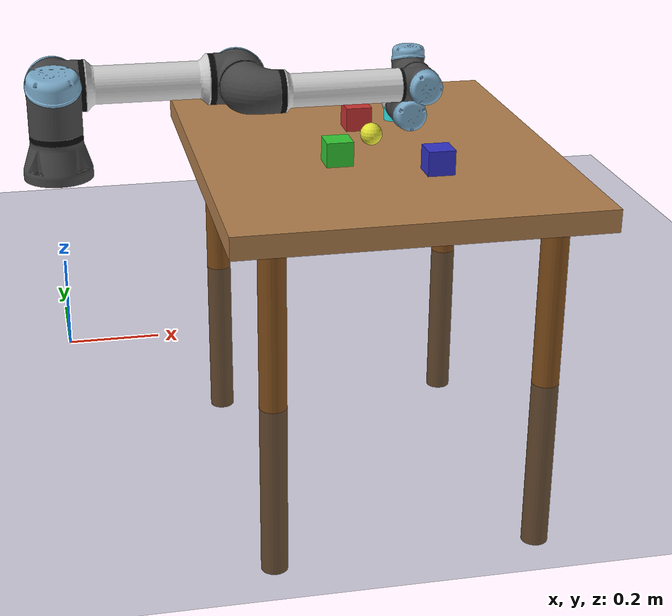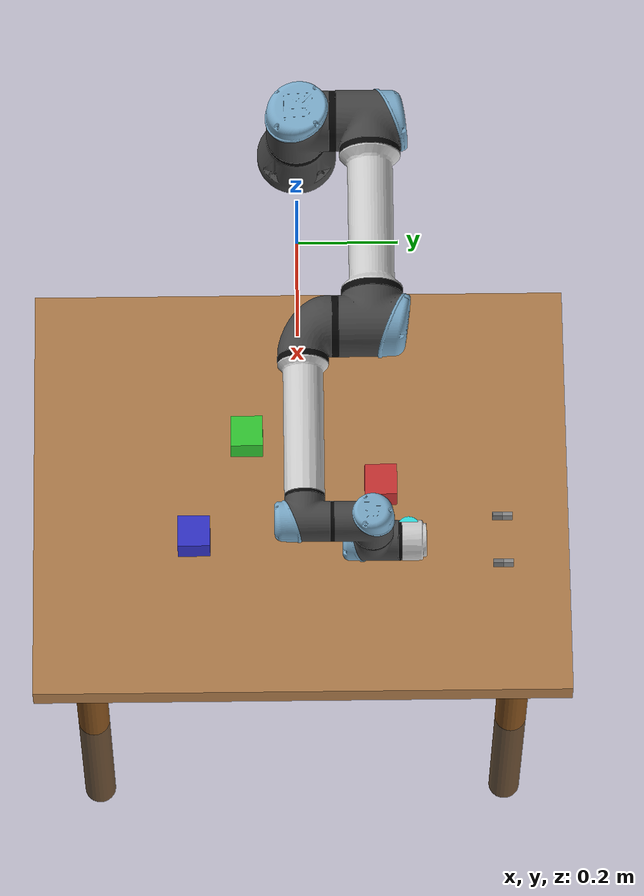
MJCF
<mujoco model="ur5e_manipulation_scene">
  <compiler angle="radian" meshdir="mujoco_menagerie" autolimits="true"/>

  <option integrator="implicitfast" timestep="0.002"/>

  <statistic center="0.5 0 0.4" extent="1.2"/>

  <visual>
    <headlight diffuse="0.6 0.6 0.6" ambient="0.3 0.3 0.3" specular="0.1 0.1 0.1"/>
    <rgba haze="0.15 0.25 0.35 1"/>
    <global azimuth="120" elevation="-20"/>
    <quality shadowsize="2048"/>
    <map stiffness="700" shadowscale="0.5" fogstart="10" fogend="15"/>
  </visual>

  <default>
    <default class="ur5e">
      <material specular="0.5" shininess="0.25"/>
      <joint axis="0 1 0" range="-6.28319 6.28319" armature="0.1" damping="10"/>
      <general gaintype="fixed" biastype="affine" ctrlrange="-6.2831 6.2831" gainprm="5000" biasprm="0 -5000 -1000"
        forcerange="-400 400"/>
      <default class="size3">
        <default class="size3_limited">
          <joint range="-3.1415 3.1415"/>
          <general ctrlrange="-3.1415 3.1415"/>
        </default>
      </default>
      <default class="size1">
        <general gainprm="1000" biasprm="0 -1000 -200" forcerange="-60 60"/>
      </default>
      <default class="visual">
        <geom type="mesh" contype="0" conaffinity="0" group="2"/>
      </default>
      <default class="collision">
        <geom type="capsule" group="3"/>
        <default class="eef_collision">
          <geom type="cylinder"/>
        </default>
      </default>
      <site size="0.001" rgba="0.5 0.5 0.5 0.3" group="4"/>
    </default>
  </default>

  <asset>
    <!-- UR5e materials -->
    <material class="ur5e" name="black" rgba="0.033 0.033 0.033 1"/>
    <material class="ur5e" name="jointgray" rgba="0.278 0.278 0.278 1"/>
    <material class="ur5e" name="linkgray" rgba="0.82 0.82 0.82 1"/>
    <material class="ur5e" name="urblue" rgba="0.49 0.678 0.8 1"/>

    <!-- Robotiq 2F-85 gripper materials -->
    <material name="metal" rgba="0.58 0.58 0.58 1"/>
    <material name="silicone" rgba="0.1882 0.1882 0.1882 1"/>
    <material name="gray" rgba="0.4627 0.4627 0.4627 1"/>
    <material name="robotiq_black" rgba="0.149 0.149 0.149 1"/>

    <!-- Environment materials -->
    <texture type="skybox" builtin="gradient" rgb1="0.3 0.5 0.7" rgb2="0 0 0" width="512" height="3072"/>
    <texture type="2d" name="groundplane" builtin="checker" mark="edge" rgb1="0.2 0.3 0.4" rgb2="0.1 0.2 0.3"
      markrgb="0.8 0.8 0.8" width="300" height="300"/>
    <material name="groundplane" texture="groundplane" texuniform="true" texrepeat="5 5" reflectance="0.2"/>

    <!-- Table material -->
    <material name="table" rgba="0.7 0.5 0.3 1"/>

    <!-- Object materials -->
    <material name="red_cube" rgba="0.8 0.2 0.2 1"/>
    <material name="green_cube" rgba="0.2 0.8 0.2 1"/>
    <material name="blue_cube" rgba="0.2 0.2 0.8 1"/>
    <material name="yellow_sphere" rgba="0.9 0.9 0.2 1"/>
    <material name="cyan_cylinder" rgba="0.2 0.9 0.9 1"/>

    <!-- UR5e meshes -->
    <mesh file="universal_robots_ur5e/assets/base_0.obj"/>
    <mesh file="universal_robots_ur5e/assets/base_1.obj"/>
    <mesh file="universal_robots_ur5e/assets/shoulder_0.obj"/>
    <mesh file="universal_robots_ur5e/assets/shoulder_1.obj"/>
    <mesh file="universal_robots_ur5e/assets/shoulder_2.obj"/>
    <mesh file="universal_robots_ur5e/assets/upperarm_0.obj"/>
    <mesh file="universal_robots_ur5e/assets/upperarm_1.obj"/>
    <mesh file="universal_robots_ur5e/assets/upperarm_2.obj"/>
    <mesh file="universal_robots_ur5e/assets/upperarm_3.obj"/>
    <mesh file="universal_robots_ur5e/assets/forearm_0.obj"/>
    <mesh file="universal_robots_ur5e/assets/forearm_1.obj"/>
    <mesh file="universal_robots_ur5e/assets/forearm_2.obj"/>
    <mesh file="universal_robots_ur5e/assets/forearm_3.obj"/>
    <mesh file="universal_robots_ur5e/assets/wrist1_0.obj"/>
    <mesh file="universal_robots_ur5e/assets/wrist1_1.obj"/>
    <mesh file="universal_robots_ur5e/assets/wrist1_2.obj"/>
    <mesh file="universal_robots_ur5e/assets/wrist2_0.obj"/>
    <mesh file="universal_robots_ur5e/assets/wrist2_1.obj"/>
    <mesh file="universal_robots_ur5e/assets/wrist2_2.obj"/>
    <mesh file="universal_robots_ur5e/assets/wrist3.obj"/>

    <!-- Robotiq 2F-85 gripper meshes -->
    <mesh name="gripper_base_mount" file="robotiq_2f85/assets/base_mount.stl" scale="0.001 0.001 0.001"/>
    <mesh name="gripper_base" file="robotiq_2f85/assets/base.stl" scale="0.001 0.001 0.001"/>
    <mesh name="gripper_driver" file="robotiq_2f85/assets/driver.stl" scale="0.001 0.001 0.001"/>
    <mesh name="gripper_coupler" file="robotiq_2f85/assets/coupler.stl" scale="0.001 0.001 0.001"/>
    <mesh name="gripper_follower" file="robotiq_2f85/assets/follower.stl" scale="0.001 0.001 0.001"/>
    <mesh name="gripper_pad" file="robotiq_2f85/assets/pad.stl" scale="0.001 0.001 0.001"/>
    <mesh name="gripper_silicone_pad" file="robotiq_2f85/assets/silicone_pad.stl" scale="0.001 0.001 0.001"/>
    <mesh name="gripper_spring_link" file="robotiq_2f85/assets/spring_link.stl" scale="0.001 0.001 0.001"/>
  </asset>

  <worldbody>
    <!-- Lighting -->
    <light name="top_light" pos="0.5 0 2" dir="0 0 -1" directional="true" diffuse="0.8 0.8 0.8"/>
    <light name="side_light" pos="1 1 1.5" dir="-0.5 -0.5 -1" directional="true" diffuse="0.4 0.4 0.4"/>

    <!-- Floor -->
    <geom name="floor" size="0 0 0.05" type="plane" material="groundplane"/>

    <!-- Cameras -->
    <camera name="external_camera_left" pos="1.0 0.8 1.2" xyaxes="-0.8 0.6 0 -0.3 -0.4 0.9" fovy="60"/>
    <camera name="front_camera" pos="1.5 0 0.8" xyaxes="0 -1 0 0.5 0 1" fovy="60"/>

    <!-- Table -->
    <body name="table" pos="0.7 0 0">
      <geom name="table_top" type="box" size="0.4 0.5 0.025" pos="0 0 0.4" material="table"/>
      <geom name="table_leg1" type="cylinder" size="0.03 0.4" pos="0.3 0.4 0" rgba="0.5 0.3 0.1 1"/>
      <geom name="table_leg2" type="cylinder" size="0.03 0.4" pos="0.3 -0.4 0" rgba="0.5 0.3 0.1 1"/>
      <geom name="table_leg3" type="cylinder" size="0.03 0.4" pos="-0.3 0.4 0" rgba="0.5 0.3 0.1 1"/>
      <geom name="table_leg4" type="cylinder" size="0.03 0.4" pos="-0.3 -0.4 0" rgba="0.5 0.3 0.1 1"/>
    </body>

    <!-- UR5e Robot -->
    <body name="robot_base" pos="0 0 0.4" childclass="ur5e">
      <inertial mass="4.0" pos="0 0 0" diaginertia="0.00443333156 0.00443333156 0.0072"/>
      <geom mesh="base_0" material="black" class="visual"/>
      <geom mesh="base_1" material="jointgray" class="visual"/>
      <body name="shoulder_link" pos="0 0 0.163">
        <inertial mass="3.7" pos="0 0 0" diaginertia="0.0102675 0.0102675 0.00666"/>
        <joint name="shoulder_pan_joint" class="size3" axis="0 0 1"/>
        <geom mesh="shoulder_0" material="urblue" class="visual"/>
        <geom mesh="shoulder_1" material="black" class="visual"/>
        <geom mesh="shoulder_2" material="jointgray" class="visual"/>
        <geom class="collision" size="0.06 0.06" pos="0 0 -0.04"/>
        <body name="upper_arm_link" pos="0 0.138 0" quat="1 0 1 0">
          <inertial mass="8.393" pos="0 0 0.2125" diaginertia="0.133886 0.133886 0.0151074"/>
          <joint name="shoulder_lift_joint" class="size3"/>
          <geom mesh="upperarm_0" material="linkgray" class="visual"/>
          <geom mesh="upperarm_1" material="black" class="visual"/>
          <geom mesh="upperarm_2" material="jointgray" class="visual"/>
          <geom mesh="upperarm_3" material="urblue" class="visual"/>
          <geom class="collision" pos="0 -0.04 0" quat="1 1 0 0" size="0.06 0.06"/>
          <geom class="collision" size="0.05 0.2" pos="0 0 0.2"/>
          <body name="forearm_link" pos="0 -0.131 0.425">
            <inertial mass="2.275" pos="0 0 0.196" diaginertia="0.0311796 0.0311796 0.004095"/>
            <joint name="elbow_joint" class="size3_limited"/>
            <geom mesh="forearm_0" material="urblue" class="visual"/>
            <geom mesh="forearm_1" material="linkgray" class="visual"/>
            <geom mesh="forearm_2" material="black" class="visual"/>
            <geom mesh="forearm_3" material="jointgray" class="visual"/>
            <geom class="collision" pos="0 0.08 0" quat="1 1 0 0" size="0.055 0.06"/>
            <geom class="collision" size="0.038 0.19" pos="0 0 0.2"/>
            <body name="wrist_1_link" pos="0 0 0.392" quat="1 0 1 0">
              <inertial mass="1.219" pos="0 0.127 0" diaginertia="0.0025599 0.0025599 0.0021942"/>
              <joint name="wrist_1_joint" class="size1"/>
              <geom mesh="wrist1_0" material="black" class="visual"/>
              <geom mesh="wrist1_1" material="urblue" class="visual"/>
              <geom mesh="wrist1_2" material="jointgray" class="visual"/>
              <geom class="collision" pos="0 0.05 0" quat="1 1 0 0" size="0.04 0.07"/>
              <body name="wrist_2_link" pos="0 0.127 0">
                <inertial mass="1.219" pos="0 0 0.1" diaginertia="0.0025599 0.0025599 0.0021942"/>
                <joint name="wrist_2_joint" axis="0 0 1" class="size1"/>
                <geom mesh="wrist2_0" material="black" class="visual"/>
                <geom mesh="wrist2_1" material="urblue" class="visual"/>
                <geom mesh="wrist2_2" material="jointgray" class="visual"/>
                <geom class="collision" size="0.04 0.06" pos="0 0 0.04"/>
                <geom class="collision" pos="0 0.02 0.1" quat="1 1 0 0" size="0.04 0.04"/>
                <body name="wrist_3_link" pos="0 0 0.1">
                  <inertial mass="0.1889" pos="0 0.0771683 0" quat="1 0 0 1"
                    diaginertia="0.000132134 9.90863e-05 9.90863e-05"/>
                  <joint name="wrist_3_joint" class="size1"/>
                  <geom material="linkgray" mesh="wrist3" class="visual"/>
                  <geom class="eef_collision" pos="0 0.08 0" quat="1 1 0 0" size="0.04 0.02"/>
                  <site name="attachment_site" pos="0 0.1 0" quat="-1 1 0 0"/>

                  <!-- Wrist camera mounted on end-effector -->
                  <camera name="wrist_camera" pos="0 0.1 0.05" xyaxes="1 0 0 0 0 1" fovy="100"/>

                  <!-- Visual marker for wrist camera debugging -->
                  <!-- Robotiq 2F-85 Gripper -->
                  <body name="gripper_base_mount" pos="0 0.1 0" quat="0 0 0.707107 0.707107">
                    <inertial mass="0.777441" pos="0 -2.70394e-05 0.0354675" quat="1 -0.00152849 0 0"
                      diaginertia="0.000260285 0.000225381 0.000152708"/>
                    <geom type="mesh" mesh="gripper_base_mount" material="robotiq_black" contype="0" conaffinity="0" group="2"/>
                    <geom type="mesh" mesh="gripper_base_mount" group="3"/>
                    <body name="gripper_base" pos="0 0 0.0108" quat="1 0 0 -1">
                      <geom type="mesh" mesh="gripper_base" material="robotiq_black" contype="0" conaffinity="0" group="2"/>
                      <geom type="mesh" mesh="gripper_base" group="3"/>
                      <site name="pinch" pos="0 0 0.145" type="sphere" group="5" rgba="0.9 0.9 0.9 1" size="0.005"/>

                      <!-- Right finger assembly -->
                      <body name="right_driver" pos="0 0.0306011 0.054904">
                        <inertial mass="0.00899563" pos="2.96931e-12 0.0177547 0.00107314" quat="0.681301 0.732003 0 0"
                          diaginertia="1.72352e-06 1.60906e-06 3.22006e-07"/>
                        <joint name="right_driver_joint" type="hinge" axis="1 0 0" range="0 0.8" armature="0.005" damping="0.1"/>
                        <geom type="mesh" mesh="gripper_driver" material="gray" contype="0" conaffinity="0" group="2"/>
                        <geom type="mesh" mesh="gripper_driver" group="3"/>
                        <body name="right_coupler" pos="0 0.0315 -0.0041">
                          <inertial mass="0.0140974" pos="0 0.00301209 0.0232175" quat="0.705636 -0.0455904 0.0455904 0.705636"
                            diaginertia="4.16206e-06 3.52216e-06 8.88131e-07"/>
                          <joint name="right_coupler_joint" type="hinge" axis="1 0 0" range="-1.57 0" armature="0.001"/>
                          <geom type="mesh" mesh="gripper_coupler" material="robotiq_black" contype="0" conaffinity="0" group="2"/>
                          <geom type="mesh" mesh="gripper_coupler" group="3"/>
                        </body>
                      </body>
                      <body name="right_spring_link" pos="0 0.0132 0.0609">
                        <inertial mass="0.0221642" pos="-8.65005e-09 0.0181624 0.0212658" quat="0.663403 -0.244737 0.244737 0.663403"
                          diaginertia="8.96853e-06 6.71733e-06 2.63931e-06"/>
                        <joint name="right_spring_link_joint" type="hinge" axis="1 0 0" range="-0.29670597283 0.8" stiffness="0.05" springref="2.62" damping="0.00125" armature="0.001"/>
                        <geom type="mesh" mesh="gripper_spring_link" material="robotiq_black" contype="0" conaffinity="0" group="2"/>
                        <geom type="mesh" mesh="gripper_spring_link" group="3"/>
                        <body name="right_follower" pos="0 0.055 0.0375">
                          <inertial mass="0.0125222" pos="0 -0.011046 0.0124786" quat="1 0.1664 0 0"
                            diaginertia="2.67415e-06 2.4559e-06 6.02031e-07"/>
                          <joint name="right_follower_joint" type="hinge" axis="1 0 0" range="-0.872664 0.872664" pos="0 -0.018 0.0065" armature="0.001"/>
                          <geom type="mesh" mesh="gripper_follower" material="robotiq_black" contype="0" conaffinity="0" group="2"/>
                          <geom type="mesh" mesh="gripper_follower" group="3"/>
                          <body name="right_pad" pos="0 -0.0189 0.01352">
                            <inertial mass="0.0035" pos="0 -0.0025 0.0185" quat="0.707107 0 0 0.707107"
                              diaginertia="4.73958e-07 3.64583e-07 1.23958e-07"/>
                            <geom type="mesh" mesh="gripper_pad" contype="0" conaffinity="0" group="2"/>
                            <geom type="box" pos="0 -0.0026 0.028125" size="0.011 0.004 0.009375" friction="0.7" rgba="0.55 0.55 0.55 1"/>
                            <geom type="box" pos="0 -0.0026 0.009375" size="0.011 0.004 0.009375" friction="0.6" rgba="0.45 0.45 0.45 1"/>
                            <body name="right_silicone_pad">
                              <geom type="mesh" mesh="gripper_silicone_pad" material="robotiq_black" contype="0" conaffinity="0" group="2"/>
                            </body>
                          </body>
                        </body>
                      </body>

                      <!-- Left finger assembly (mirrored) -->
                      <body name="left_driver" pos="0 -0.0306011 0.054904" quat="0 0 0 1">
                        <inertial mass="0.00899563" pos="0 0.0177547 0.00107314" quat="0.681301 0.732003 0 0"
                          diaginertia="1.72352e-06 1.60906e-06 3.22006e-07"/>
                        <joint name="left_driver_joint" type="hinge" axis="1 0 0" range="0 0.8" armature="0.005" damping="0.1"/>
                        <geom type="mesh" mesh="gripper_driver" material="gray" contype="0" conaffinity="0" group="2"/>
                        <geom type="mesh" mesh="gripper_driver" group="3"/>
                        <body name="left_coupler" pos="0 0.0315 -0.0041">
                          <inertial mass="0.0140974" pos="0 0.00301209 0.0232175" quat="0.705636 -0.0455904 0.0455904 0.705636"
                            diaginertia="4.16206e-06 3.52216e-06 8.88131e-07"/>
                          <joint name="left_coupler_joint" type="hinge" axis="1 0 0" range="-1.57 0" armature="0.001"/>
                          <geom type="mesh" mesh="gripper_coupler" material="robotiq_black" contype="0" conaffinity="0" group="2"/>
                          <geom type="mesh" mesh="gripper_coupler" group="3"/>
                        </body>
                      </body>
                      <body name="left_spring_link" pos="0 -0.0132 0.0609" quat="0 0 0 1">
                        <inertial mass="0.0221642" pos="-8.65005e-09 0.0181624 0.0212658" quat="0.663403 -0.244737 0.244737 0.663403"
                          diaginertia="8.96853e-06 6.71733e-06 2.63931e-06"/>
                        <joint name="left_spring_link_joint" type="hinge" axis="1 0 0" range="-0.29670597283 0.8" stiffness="0.05" springref="2.62" damping="0.00125" armature="0.001"/>
                        <geom type="mesh" mesh="gripper_spring_link" material="robotiq_black" contype="0" conaffinity="0" group="2"/>
                        <geom type="mesh" mesh="gripper_spring_link" group="3"/>
                        <body name="left_follower" pos="0 0.055 0.0375">
                          <inertial mass="0.0125222" pos="0 -0.011046 0.0124786" quat="1 0.1664 0 0"
                            diaginertia="2.67415e-06 2.4559e-06 6.02031e-07"/>
                          <joint name="left_follower_joint" type="hinge" axis="1 0 0" range="-0.872664 0.872664" pos="0 -0.018 0.0065" armature="0.001"/>
                          <geom type="mesh" mesh="gripper_follower" material="robotiq_black" contype="0" conaffinity="0" group="2"/>
                          <geom type="mesh" mesh="gripper_follower" group="3"/>
                          <body name="left_pad" pos="0 -0.0189 0.01352">
                            <inertial mass="0.0035" pos="0 -0.0025 0.0185" quat="1 0 0 1"
                              diaginertia="4.73958e-07 3.64583e-07 1.23958e-07"/>
                            <geom type="mesh" mesh="gripper_pad" contype="0" conaffinity="0" group="2"/>
                            <geom type="box" pos="0 -0.0026 0.028125" size="0.011 0.004 0.009375" friction="0.7" rgba="0.55 0.55 0.55 1"/>
                            <geom type="box" pos="0 -0.0026 0.009375" size="0.011 0.004 0.009375" friction="0.6" rgba="0.45 0.45 0.45 1"/>
                            <body name="left_silicone_pad">
                              <geom type="mesh" mesh="gripper_silicone_pad" material="robotiq_black" contype="0" conaffinity="0" group="2"/>
                            </body>
                          </body>
                        </body>
                      </body>
                    </body>
                  </body>
                </body>
              </body>
            </body>
          </body>
        </body>
      </body>
    </body>

    <!-- Manipulable Objects on table -->
    <body name="red_cube" pos="0.7 0.15 0.45">
      <freejoint/>
      <inertial pos="0 0 0" mass="0.1" diaginertia="0.00016667 0.00016667 0.00016667"/>
      <geom name="red_cube_geom" type="box" size="0.03 0.03 0.03" material="red_cube" friction="1 0.5 0.5"/>
    </body>

    <body name="green_cube" pos="0.6 -0.1 0.45">
      <freejoint/>
      <inertial pos="0 0 0" mass="0.1" diaginertia="0.00016667 0.00016667 0.00016667"/>
      <geom name="green_cube_geom" type="box" size="0.03 0.03 0.03" material="green_cube" friction="1 0.5 0.5"/>
    </body>

    <body name="blue_cube" pos="0.8 -0.2 0.45">
      <freejoint/>
      <inertial pos="0 0 0" mass="0.1" diaginertia="0.00016667 0.00016667 0.00016667"/>
      <geom name="blue_cube_geom" type="box" size="0.03 0.03 0.03" material="blue_cube" friction="1 0.5 0.5"/>
    </body>

    <body name="yellow_sphere5708" pos="0.7 0 0.455">
      <freejoint/>
      <inertial pos="0 0 0" mass="0.08" diaginertia="0.0001536 0.0001536 0.0001536"/>
      <geom name="yellow_sphere_geom" type="sphere" size="0.025" material="yellow_sphere" friction="1 0.5 0.5"/>
    </body>

    <body name="cyan_cylinder" pos="0.8 0.2 0.45">
      <freejoint/>
      <inertial pos="0 0 0" mass="0.09" diaginertia="0.000135 0.000135 0.0000675"/>
      <geom name="cyan_cylinder_geom" type="cylinder" size="0.02 0.04" material="cyan_cylinder" friction="1 0.5 0.5"/>
    </body>
  </worldbody>

  <contact>
    <exclude body1="gripper_base" body2="left_driver"/>
    <exclude body1="gripper_base" body2="right_driver"/>
    <exclude body1="gripper_base" body2="left_spring_link"/>
    <exclude body1="gripper_base" body2="right_spring_link"/>
    <exclude body1="right_coupler" body2="right_follower"/>
    <exclude body1="left_coupler" body2="left_follower"/>
  </contact>

  <tendon>
    <fixed name="split">
      <joint joint="right_driver_joint" coef="0.5"/>
      <joint joint="left_driver_joint" coef="0.5"/>
    </fixed>
  </tendon>

  <equality>
    <connect anchor="0 0 0" body1="right_follower" body2="right_coupler" solimp="0.95 0.99 0.001" solref="0.005 1"/>
    <connect anchor="0 0 0" body1="left_follower" body2="left_coupler" solimp="0.95 0.99 0.001" solref="0.005 1"/>
    <joint joint1="right_driver_joint" joint2="left_driver_joint" polycoef="0 1 0 0 0" solimp="0.95 0.99 0.001" solref="0.005 1"/>
  </equality>

  <actuator>
    <!-- UR5 arm actuators -->
    <general class="size3" name="shoulder_pan" joint="shoulder_pan_joint"/>
    <general class="size3" name="shoulder_lift" joint="shoulder_lift_joint"/>
    <general class="size3_limited" name="elbow" joint="elbow_joint"/>
    <general class="size1" name="wrist_1" joint="wrist_1_joint"/>
    <general class="size1" name="wrist_2" joint="wrist_2_joint"/>
    <general class="size1" name="wrist_3" joint="wrist_3_joint"/>
    <!-- Robotiq gripper actuator -->
    <general name="fingers_actuator" tendon="split" forcerange="-5 5" ctrlrange="0 255" gainprm="0.3137255 0 0" biasprm="0 -100 -10"/>
  </actuator>

  <keyframe>
    <!-- Key pose: 6 arm joints + 8 gripper joints (robotiq) + 5 free objects (7 DOFs each: x y z qw qx qy qz) -->
    <!-- Gripper joints: right_driver, right_coupler, right_spring_link, right_follower, left_driver, left_coupler, left_spring_link, left_follower -->
    <key name="home"
         qpos="0 -1.5708 1.5708 -1.5708 -1.5708 0
               0 0 0 0 0 0 0 0
               0.7 0.15 0.45 1 0 0 0
               0.6 -0.1 0.45 1 0 0 0
               0.8 -0.2 0.45 1 0 0 0
               0.7 0 0.455 1 0 0 0
               0.8 0.2 0.45 1 0 0 0" />
  </keyframe>
</mujoco>
